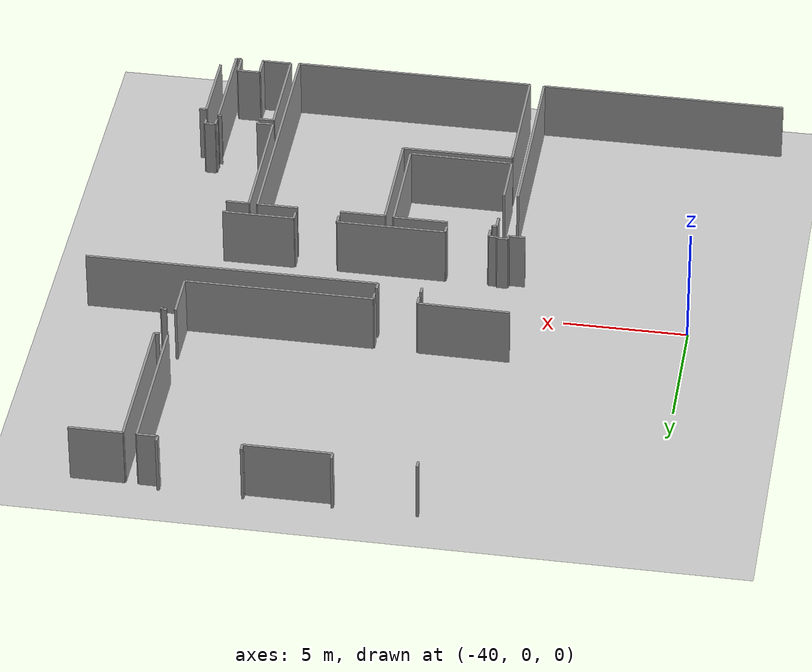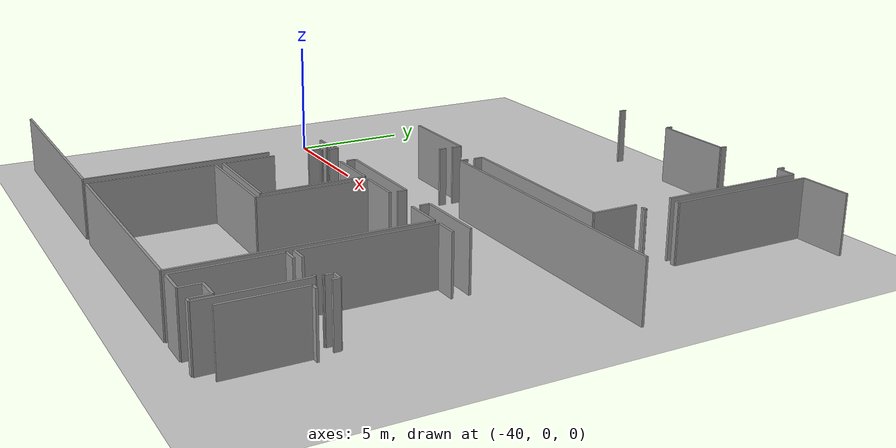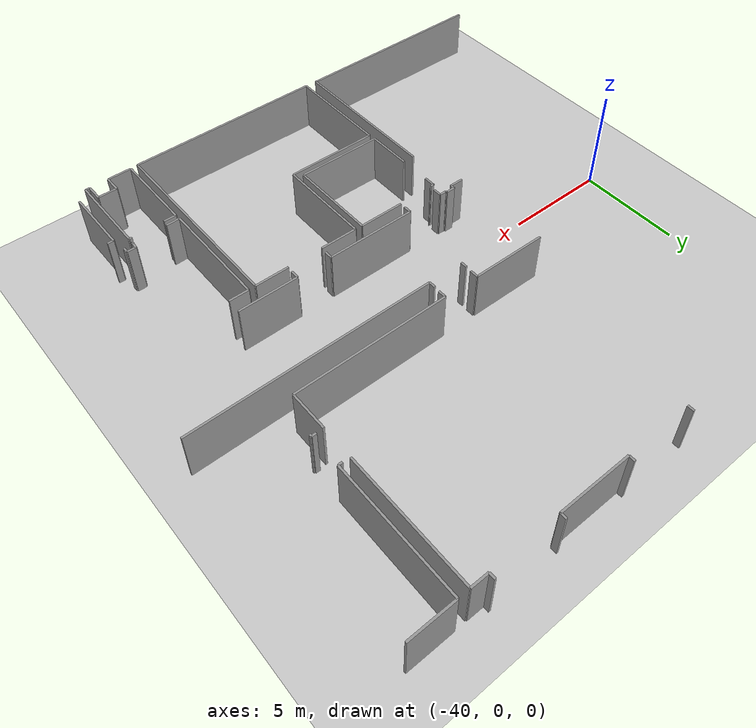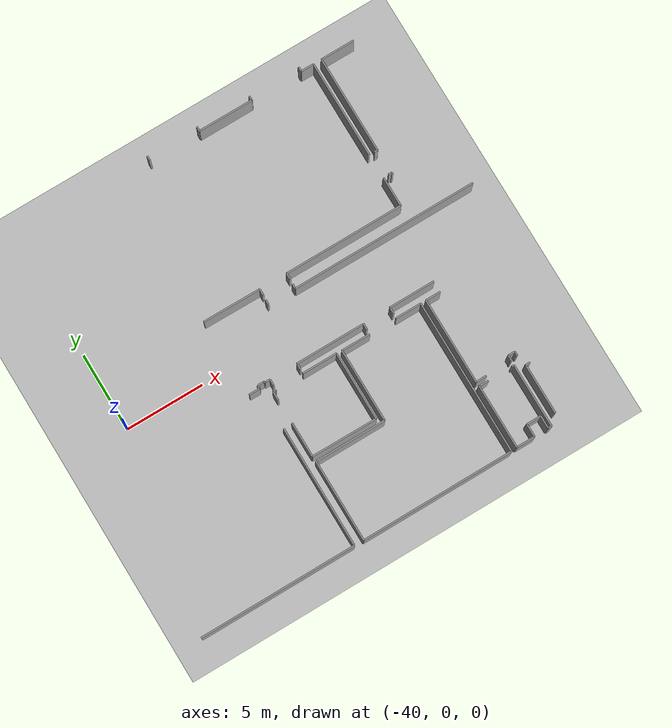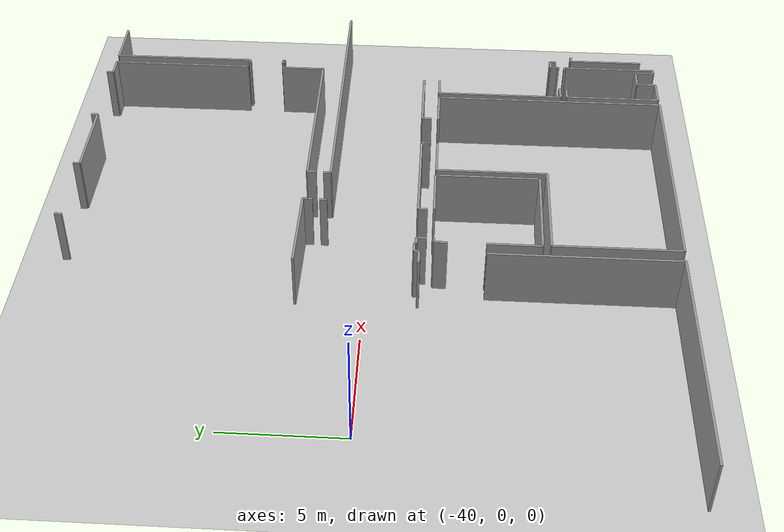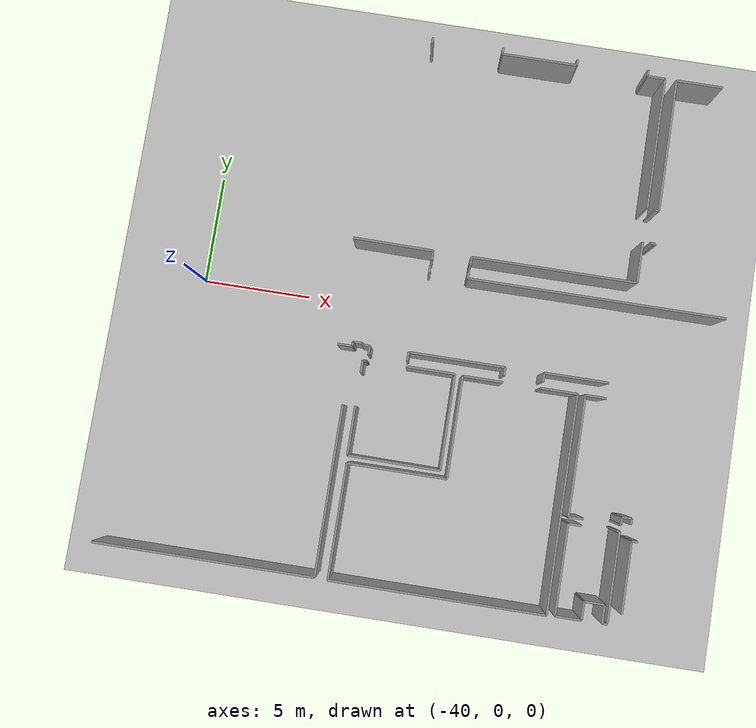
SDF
<sdf version="1.6">
 <world name="default">
  <model name="ground_plane">
   <static>1</static>
   <link name="link">
    <collision name="collision">
     <geometry><plane><normal>0 0 1</normal><size>100 100</size></plane></geometry>
     <surface><friction><ode><mu>100</mu><mu2>50</mu2></ode></friction></surface>
    </collision>
    <visual name="visual">
     <cast_shadows>0</cast_shadows>
     <geometry><plane><normal>0 0 1</normal><size>100 100</size></plane></geometry>
     <material>
      <script><uri>file://media/materials/scripts/gazebo.material</uri><name>Gazebo/Grey</name></script>
     </material>
    </visual>
   </link>
  </model>
  <model name="0510032198_A_40_1_106">
   <static>1</static>
   <link name="Wall_61">
    <collision name="Wall_61_Collision">
     <geometry><box><size>0.307588712854 0.1 2.5</size></box></geometry>
     <pose>0.153794356427 0 1.25 0 0 0</pose>
    </collision>
    <visual name="Wall_61_Visual">
     <pose>0.153794356427 0 1.25 0 0 0</pose>
     <geometry><box><size>0.307588712854 0.1 2.5</size></box></geometry>
     <material>
      <script><uri>file://media/materials/scripts/gazebo.material</uri><name>Gazebo/Grey</name></script>
      <ambient>1 1 1 1</ambient>
     </material>
    </visual>
    <pose>36.569388507 -0.307588712854 0 0 0 1.57079632679</pose>
   </link>
   <link name="Wall_62">
    <collision name="Wall_62_Collision">
     <geometry><box><size>0.291072177261 0.1 2.5</size></box></geometry>
     <pose>0.14553608863 0 1.25 0 0 0</pose>
    </collision>
    <visual name="Wall_62_Visual">
     <pose>0.14553608863 0 1.25 0 0 0</pose>
     <geometry><box><size>0.291072177261 0.1 2.5</size></box></geometry>
     <material>
      <script><uri>file://media/materials/scripts/gazebo.material</uri><name>Gazebo/Grey</name></script>
      <ambient>1 1 1 1</ambient>
     </material>
    </visual>
    <pose>39.8870523066 -0.0 0 0 0 -1.57079632679</pose>
   </link>
   <link name="Wall_63">
    <collision name="Wall_63_Collision">
     <geometry><box><size>3.50226784739 0.1 2.5</size></box></geometry>
     <pose>1.75113392369 0 1.25 0 0 0</pose>
    </collision>
    <visual name="Wall_63_Visual">
     <pose>1.75113392369 0 1.25 0 0 0</pose>
     <geometry><box><size>3.50226784739 0.1 2.5</size></box></geometry>
     <material>
      <script><uri>file://media/materials/scripts/gazebo.material</uri><name>Gazebo/Grey</name></script>
      <ambient>1 1 1 1</ambient>
     </material>
    </visual>
    <pose>39.8870523066 -0.291072177261 0 0 0 0.0</pose>
   </link>
   <link name="Wall_64">
    <collision name="Wall_64_Collision">
     <geometry><box><size>0.283830311654 0.1 2.5</size></box></geometry>
     <pose>0.141915155827 0 1.25 0 0 0</pose>
    </collision>
    <visual name="Wall_64_Visual">
     <pose>0.141915155827 0 1.25 0 0 0</pose>
     <geometry><box><size>0.283830311654 0.1 2.5</size></box></geometry>
     <material>
      <script><uri>file://media/materials/scripts/gazebo.material</uri><name>Gazebo/Grey</name></script>
      <ambient>1 1 1 1</ambient>
     </material>
    </visual>
    <pose>43.389320154 -0.291072177261 0 0 0 1.57079632679</pose>
   </link>
   <link name="Wall_65">
    <collision name="Wall_65_Collision">
     <geometry><box><size>0.296281238486 0.1 2.5</size></box></geometry>
     <pose>0.148140619243 0 1.25 0 0 0</pose>
    </collision>
    <visual name="Wall_65_Visual">
     <pose>0.148140619243 0 1.25 0 0 0</pose>
     <geometry><box><size>0.296281238486 0.1 2.5</size></box></geometry>
     <material>
      <script><uri>file://media/materials/scripts/gazebo.material</uri><name>Gazebo/Grey</name></script>
      <ambient>1 1 1 1</ambient>
     </material>
    </visual>
    <pose>46.7060946016 -0.00724186560622 0 0 0 -1.57079632679</pose>
   </link>
   <link name="Wall_66">
    <collision name="Wall_66_Collision">
     <geometry><box><size>0.822396422264 0.1 2.5</size></box></geometry>
     <pose>0.411198211132 0 1.25 0 0 0</pose>
    </collision>
    <visual name="Wall_66_Visual">
     <pose>0.411198211132 0 1.25 0 0 0</pose>
     <geometry><box><size>0.822396422264 0.1 2.5</size></box></geometry>
     <material>
      <script><uri>file://media/materials/scripts/gazebo.material</uri><name>Gazebo/Grey</name></script>
      <ambient>1 1 1 1</ambient>
     </material>
    </visual>
    <pose>46.7060946016 -0.303523104092 0 0 0 0.0</pose>
   </link>
   <link name="Wall_67">
    <collision name="Wall_67_Collision">
     <geometry><box><size>6.19243034469 0.1 2.5</size></box></geometry>
     <pose>3.09621517234 0 1.25 0 0 0</pose>
    </collision>
    <visual name="Wall_67_Visual">
     <pose>3.09621517234 0 1.25 0 0 0</pose>
     <geometry><box><size>6.19243034469 0.1 2.5</size></box></geometry>
     <material>
      <script><uri>file://media/materials/scripts/gazebo.material</uri><name>Gazebo/Grey</name></script>
      <ambient>1 1 1 1</ambient>
     </material>
    </visual>
    <pose>47.5284910239 -0.303523104092 0 0 0 -1.57079632679</pose>
   </link>
   <link name="Wall_68">
    <collision name="Wall_68_Collision">
     <geometry><box><size>1.89597123582 0.1 2.5</size></box></geometry>
     <pose>0.947985617909 0 1.25 0 0 0</pose>
    </collision>
    <visual name="Wall_68_Visual">
     <pose>0.947985617909 0 1.25 0 0 0</pose>
     <geometry><box><size>1.89597123582 0.1 2.5</size></box></geometry>
     <material>
      <script><uri>file://media/materials/scripts/gazebo.material</uri><name>Gazebo/Grey</name></script>
      <ambient>1 1 1 1</ambient>
     </material>
    </visual>
    <pose>47.5284910239 -8.08497122311 0 0 0 -1.57079632679</pose>
   </link>
   <link name="Wall_69">
    <collision name="Wall_69_Collision">
     <geometry><box><size>7.61945901993 0.1 2.5</size></box></geometry>
     <pose>3.80972950997 0 1.25 0 0 0</pose>
    </collision>
    <visual name="Wall_69_Visual">
     <pose>3.80972950997 0 1.25 0 0 0</pose>
     <geometry><box><size>7.61945901993 0.1 2.5</size></box></geometry>
     <material>
      <script><uri>file://media/materials/scripts/gazebo.material</uri><name>Gazebo/Grey</name></script>
      <ambient>1 1 1 1</ambient>
     </material>
    </visual>
    <pose>47.5284910239 -9.98094245893 0 0 0 3.14159265359</pose>
   </link>
   <link name="Wall_70">
    <collision name="Wall_70_Collision">
     <geometry><box><size>0.389282038903 0.1 2.5</size></box></geometry>
     <pose>0.194641019451 0 1.25 0 0 0</pose>
    </collision>
    <visual name="Wall_70_Visual">
     <pose>0.194641019451 0 1.25 0 0 0</pose>
     <geometry><box><size>0.389282038903 0.1 2.5</size></box></geometry>
     <material>
      <script><uri>file://media/materials/scripts/gazebo.material</uri><name>Gazebo/Grey</name></script>
      <ambient>1 1 1 1</ambient>
     </material>
    </visual>
    <pose>39.909032004 -9.98094245893 0 0 0 -1.57079632679</pose>
   </link>
   <link name="Wall_71">
    <collision name="Wall_71_Collision">
     <geometry><box><size>0.403765770115 0.1 2.5</size></box></geometry>
     <pose>0.201882885058 0 1.25 0 0 0</pose>
    </collision>
    <visual name="Wall_71_Visual">
     <pose>0.201882885058 0 1.25 0 0 0</pose>
     <geometry><box><size>0.403765770115 0.1 2.5</size></box></geometry>
     <material>
      <script><uri>file://media/materials/scripts/gazebo.material</uri><name>Gazebo/Grey</name></script>
      <ambient>1 1 1 1</ambient>
     </material>
    </visual>
    <pose>38.1227051544 -10.3702244978 0 0 0 1.57079632679</pose>
   </link>
   <link name="Wall_72">
    <collision name="Wall_72_Collision">
     <geometry><box><size>3.70047773152 0.1 2.5</size></box></geometry>
     <pose>1.85023886576 0 1.25 0 0 0</pose>
    </collision>
    <visual name="Wall_72_Visual">
     <pose>1.85023886576 0 1.25 0 0 0</pose>
     <geometry><box><size>3.70047773152 0.1 2.5</size></box></geometry>
     <material>
      <script><uri>file://media/materials/scripts/gazebo.material</uri><name>Gazebo/Grey</name></script>
      <ambient>1 1 1 1</ambient>
     </material>
    </visual>
    <pose>38.1227051544 -9.96645872772 0 0 0 3.13294050898</pose>
   </link>
   <link name="Wall_75">
    <collision name="Wall_75_Collision">
     <geometry><box><size>0.101386118487 0.1 2.5</size></box></geometry>
     <pose>0.0506930592435 0 1.25 0 0 0</pose>
    </collision>
    <visual name="Wall_75_Visual">
     <pose>0.0506930592435 0 1.25 0 0 0</pose>
     <geometry><box><size>0.101386118487 0.1 2.5</size></box></geometry>
     <material>
      <script><uri>file://media/materials/scripts/gazebo.material</uri><name>Gazebo/Grey</name></script>
      <ambient>1 1 1 1</ambient>
     </material>
    </visual>
    <pose>48.0866228767 -8.17301706285 0 0 0 1.57079632679</pose>
   </link>
   <link name="Wall_76">
    <collision name="Wall_76_Collision">
     <geometry><box><size>0.217255968187 0.1 2.5</size></box></geometry>
     <pose>0.108627984093 0 1.25 0 0 0</pose>
    </collision>
    <visual name="Wall_76_Visual">
     <pose>0.108627984093 0 1.25 0 0 0</pose>
     <geometry><box><size>0.217255968187 0.1 2.5</size></box></geometry>
     <material>
      <script><uri>file://media/materials/scripts/gazebo.material</uri><name>Gazebo/Grey</name></script>
      <ambient>1 1 1 1</ambient>
     </material>
    </visual>
    <pose>48.0866228767 -8.07163094436 0 0 0 3.14159265359</pose>
   </link>
   <link name="Wall_77">
    <collision name="Wall_77_Collision">
     <geometry><box><size>0.198071376844 0.1 2.5</size></box></geometry>
     <pose>0.0990356884219 0 1.25 0 0 0</pose>
    </collision>
    <visual name="Wall_77_Visual">
     <pose>0.0990356884219 0 1.25 0 0 0</pose>
     <geometry><box><size>0.198071376844 0.1 2.5</size></box></geometry>
     <material>
      <script><uri>file://media/materials/scripts/gazebo.material</uri><name>Gazebo/Grey</name></script>
      <ambient>1 1 1 1</ambient>
     </material>
    </visual>
    <pose>47.8693669085 -6.52326925765 0 0 0 0.0</pose>
   </link>
   <link name="Wall_78">
    <collision name="Wall_78_Collision">
     <geometry><box><size>6.22063550547 0.1 2.5</size></box></geometry>
     <pose>3.11031775273 0 1.25 0 0 0</pose>
    </collision>
    <visual name="Wall_78_Visual">
     <pose>3.11031775273 0 1.25 0 0 0</pose>
     <geometry><box><size>6.22063550547 0.1 2.5</size></box></geometry>
     <material>
      <script><uri>file://media/materials/scripts/gazebo.material</uri><name>Gazebo/Grey</name></script>
      <ambient>1 1 1 1</ambient>
     </material>
    </visual>
    <pose>48.0674382853 -6.52326925765 0 0 0 1.57079632679</pose>
   </link>
   <link name="Wall_79">
    <collision name="Wall_79_Collision">
     <geometry><box><size>2.15769479983 0.1 2.5</size></box></geometry>
     <pose>1.07884739992 0 1.25 0 0 0</pose>
    </collision>
    <visual name="Wall_79_Visual">
     <pose>1.07884739992 0 1.25 0 0 0</pose>
     <geometry><box><size>2.15769479983 0.1 2.5</size></box></geometry>
     <material>
      <script><uri>file://media/materials/scripts/gazebo.material</uri><name>Gazebo/Grey</name></script>
      <ambient>1 1 1 1</ambient>
     </material>
    </visual>
    <pose>48.0674382853 -0.302633752176 0 0 0 0.0</pose>
   </link>
   <link name="Wall_225">
    <collision name="Wall_225_Collision">
     <geometry><box><size>3.21081451931 0.1 2.5</size></box></geometry>
     <pose>1.60540725965 0 1.25 0 0 0</pose>
    </collision>
    <visual name="Wall_225_Visual">
     <pose>1.60540725965 0 1.25 0 0 0</pose>
     <geometry><box><size>3.21081451931 0.1 2.5</size></box></geometry>
     <material>
      <script><uri>file://media/materials/scripts/gazebo.material</uri><name>Gazebo/Grey</name></script>
      <ambient>1 1 1 1</ambient>
     </material>
    </visual>
    <pose>48.8301210789 -24.7199176714 0 0 0 1.57079632679</pose>
   </link>
   <link name="Wall_226">
    <collision name="Wall_226_Collision">
     <geometry><box><size>0.290563976165 0.1 2.5</size></box></geometry>
     <pose>0.145281988083 0 1.25 0 0 0</pose>
    </collision>
    <visual name="Wall_226_Visual">
     <pose>0.145281988083 0 1.25 0 0 0</pose>
     <geometry><box><size>0.290563976165 0.1 2.5</size></box></geometry>
     <material>
      <script><uri>file://media/materials/scripts/gazebo.material</uri><name>Gazebo/Grey</name></script>
      <ambient>1 1 1 1</ambient>
     </material>
    </visual>
    <pose>48.8301210789 -21.5091031521 0 0 0 0.0</pose>
   </link>
   <link name="Wall_230">
    <collision name="Wall_230_Collision">
     <geometry><box><size>4.07882198986 0.1 2.5</size></box></geometry>
     <pose>2.03941099493 0 1.25 0 0 0</pose>
    </collision>
    <visual name="Wall_230_Visual">
     <pose>2.03941099493 0 1.25 0 0 0</pose>
     <geometry><box><size>4.07882198986 0.1 2.5</size></box></geometry>
     <material>
      <script><uri>file://media/materials/scripts/gazebo.material</uri><name>Gazebo/Grey</name></script>
      <ambient>1 1 1 1</ambient>
     </material>
    </visual>
    <pose>45.9348994397 -25.2574673798 0 0 0 1.57079632679</pose>
   </link>
   <link name="Wall_231">
    <collision name="Wall_231_Collision">
     <geometry><box><size>0.606283906542 0.1 2.5</size></box></geometry>
     <pose>0.303141953271 0 1.25 0 0 0</pose>
    </collision>
    <visual name="Wall_231_Visual">
     <pose>0.303141953271 0 1.25 0 0 0</pose>
     <geometry><box><size>0.606283906542 0.1 2.5</size></box></geometry>
     <material>
      <script><uri>file://media/materials/scripts/gazebo.material</uri><name>Gazebo/Grey</name></script>
      <ambient>1 1 1 1</ambient>
     </material>
    </visual>
    <pose>45.9348994397 -21.17864539 0 0 0 0.0</pose>
   </link>
   <link name="Wall_232">
    <collision name="Wall_232_Collision">
     <geometry><box><size>0.134546239947 0.1 2.5</size></box></geometry>
     <pose>0.0672731199736 0 1.25 0 0 0</pose>
    </collision>
    <visual name="Wall_232_Visual">
     <pose>0.0672731199736 0 1.25 0 0 0</pose>
     <geometry><box><size>0.134546239947 0.1 2.5</size></box></geometry>
     <material>
      <script><uri>file://media/materials/scripts/gazebo.material</uri><name>Gazebo/Grey</name></script>
      <ambient>1 1 1 1</ambient>
     </material>
    </visual>
    <pose>48.1216887522 -21.17864539 0 0 0 0.0</pose>
   </link>
   <link name="Wall_233">
    <collision name="Wall_233_Collision">
     <geometry><box><size>4.06916616905 0.1 2.5</size></box></geometry>
     <pose>2.03458308453 0 1.25 0 0 0</pose>
    </collision>
    <visual name="Wall_233_Visual">
     <pose>2.03458308453 0 1.25 0 0 0</pose>
     <geometry><box><size>4.06916616905 0.1 2.5</size></box></geometry>
     <material>
      <script><uri>file://media/materials/scripts/gazebo.material</uri><name>Gazebo/Grey</name></script>
      <ambient>1 1 1 1</ambient>
     </material>
    </visual>
    <pose>48.2562349922 -21.17864539 0 0 0 -1.57079632679</pose>
   </link>
   <link name="Wall_234">
    <collision name="Wall_234_Collision">
     <geometry><box><size>0.220940426127 0.1 2.5</size></box></geometry>
     <pose>0.110470213063 0 1.25 0 0 0</pose>
    </collision>
    <visual name="Wall_234_Visual">
     <pose>0.110470213063 0 1.25 0 0 0</pose>
     <geometry><box><size>0.220940426127 0.1 2.5</size></box></geometry>
     <material>
      <script><uri>file://media/materials/scripts/gazebo.material</uri><name>Gazebo/Grey</name></script>
      <ambient>1 1 1 1</ambient>
     </material>
    </visual>
    <pose>48.2562349922 -25.247811559 0 0 0 3.14159265359</pose>
   </link>
   <link name="Wall_235">
    <collision name="Wall_235_Collision">
     <geometry><box><size>0.816679159944 0.1 2.5</size></box></geometry>
     <pose>0.408339579972 0 1.25 0 0 0</pose>
    </collision>
    <visual name="Wall_235_Visual">
     <pose>0.408339579972 0 1.25 0 0 0</pose>
     <geometry><box><size>0.816679159944 0.1 2.5</size></box></geometry>
     <material>
      <script><uri>file://media/materials/scripts/gazebo.material</uri><name>Gazebo/Grey</name></script>
      <ambient>1 1 1 1</ambient>
     </material>
    </visual>
    <pose>48.0352945661 -25.247811559 0 0 0 1.57079632679</pose>
   </link>
   <link name="Wall_236">
    <collision name="Wall_236_Collision">
     <geometry><box><size>0.922257937466 0.1 2.5</size></box></geometry>
     <pose>0.461128968733 0 1.25 0 0 0</pose>
    </collision>
    <visual name="Wall_236_Visual">
     <pose>0.461128968733 0 1.25 0 0 0</pose>
     <geometry><box><size>0.922257937466 0.1 2.5</size></box></geometry>
     <material>
      <script><uri>file://media/materials/scripts/gazebo.material</uri><name>Gazebo/Grey</name></script>
      <ambient>1 1 1 1</ambient>
     </material>
    </visual>
    <pose>48.0352945661 -24.4311323991 0 0 0 3.14159265359</pose>
   </link>
   <link name="Wall_237">
    <collision name="Wall_237_Collision">
     <geometry><box><size>0.826207930478 0.1 2.5</size></box></geometry>
     <pose>0.413103965239 0 1.25 0 0 0</pose>
    </collision>
    <visual name="Wall_237_Visual">
     <pose>0.413103965239 0 1.25 0 0 0</pose>
     <geometry><box><size>0.826207930478 0.1 2.5</size></box></geometry>
     <material>
      <script><uri>file://media/materials/scripts/gazebo.material</uri><name>Gazebo/Grey</name></script>
      <ambient>1 1 1 1</ambient>
     </material>
    </visual>
    <pose>47.1130366286 -24.4311323991 0 0 0 -1.57079632679</pose>
   </link>
   <link name="Wall_238">
    <collision name="Wall_238_Collision">
     <geometry><box><size>1.17813719574 0.1 2.5</size></box></geometry>
     <pose>0.589068597868 0 1.25 0 0 0</pose>
    </collision>
    <visual name="Wall_238_Visual">
     <pose>0.589068597868 0 1.25 0 0 0</pose>
     <geometry><box><size>1.17813719574 0.1 2.5</size></box></geometry>
     <material>
      <script><uri>file://media/materials/scripts/gazebo.material</uri><name>Gazebo/Grey</name></script>
      <ambient>1 1 1 1</ambient>
     </material>
    </visual>
    <pose>47.1130366286 -25.2573403296 0 0 0 -3.14148481362</pose>
   </link>
   <link name="Wall_239">
    <collision name="Wall_239_Collision">
     <geometry><box><size>5.48882592842 0.1 2.5</size></box></geometry>
     <pose>2.74441296421 0 1.25 0 0 0</pose>
    </collision>
    <visual name="Wall_239_Visual">
     <pose>2.74441296421 0 1.25 0 0 0</pose>
     <geometry><box><size>5.48882592842 0.1 2.5</size></box></geometry>
     <material>
      <script><uri>file://media/materials/scripts/gazebo.material</uri><name>Gazebo/Grey</name></script>
      <ambient>1 1 1 1</ambient>
     </material>
    </visual>
    <pose>45.9098705358 -20.8990077374 0 0 0 1.57079632679</pose>
   </link>
   <link name="Wall_240">
    <collision name="Wall_240_Collision">
     <geometry><box><size>0.948811444689 0.1 2.5</size></box></geometry>
     <pose>0.474405722344 0 1.25 0 0 0</pose>
    </collision>
    <visual name="Wall_240_Visual">
     <pose>0.474405722344 0 1.25 0 0 0</pose>
     <geometry><box><size>0.948811444689 0.1 2.5</size></box></geometry>
     <material>
      <script><uri>file://media/materials/scripts/gazebo.material</uri><name>Gazebo/Grey</name></script>
      <ambient>1 1 1 1</ambient>
     </material>
    </visual>
    <pose>45.9098705358 -15.4101818089 0 0 0 0.0</pose>
   </link>
   <link name="Wall_246">
    <collision name="Wall_246_Collision">
     <geometry><box><size>0.272141686465 0.1 2.5</size></box></geometry>
     <pose>0.136070843233 0 1.25 0 0 0</pose>
    </collision>
    <visual name="Wall_246_Visual">
     <pose>0.136070843233 0 1.25 0 0 0</pose>
     <geometry><box><size>0.272141686465 0.1 2.5</size></box></geometry>
     <material>
      <script><uri>file://media/materials/scripts/gazebo.material</uri><name>Gazebo/Grey</name></script>
      <ambient>1 1 1 1</ambient>
     </material>
    </visual>
    <pose>48.7054847603 -20.8044823337 0 0 0 1.57079632679</pose>
   </link>
   <link name="Wall_247">
    <collision name="Wall_247_Collision">
     <geometry><box><size>0.429811076243 0.1 2.5</size></box></geometry>
     <pose>0.214905538121 0 1.25 0 0 0</pose>
    </collision>
    <visual name="Wall_247_Visual">
     <pose>0.214905538121 0 1.25 0 0 0</pose>
     <geometry><box><size>0.429811076243 0.1 2.5</size></box></geometry>
     <material>
      <script><uri>file://media/materials/scripts/gazebo.material</uri><name>Gazebo/Grey</name></script>
      <ambient>1 1 1 1</ambient>
     </material>
    </visual>
    <pose>48.7054847603 -20.5323406472 0 0 0 3.14159265359</pose>
   </link>
   <link name="Wall_248">
    <collision name="Wall_248_Collision">
     <geometry><box><size>0.343798040885 0.1 2.5</size></box></geometry>
     <pose>0.171899020442 0 1.25 0 0 0</pose>
    </collision>
    <visual name="Wall_248_Visual">
     <pose>0.171899020442 0 1.25 0 0 0</pose>
     <geometry><box><size>0.343798040885 0.1 2.5</size></box></geometry>
     <material>
      <script><uri>file://media/materials/scripts/gazebo.material</uri><name>Gazebo/Grey</name></script>
      <ambient>1 1 1 1</ambient>
     </material>
    </visual>
    <pose>48.2756736841 -20.5323406472 0 0 0 -1.57079632679</pose>
   </link>
   <link name="Wall_249">
    <collision name="Wall_249_Collision">
     <geometry><box><size>0.0716563544194 0.1 2.5</size></box></geometry>
     <pose>0.0358281772097 0 1.25 0 0 0</pose>
    </collision>
    <visual name="Wall_249_Visual">
     <pose>0.0358281772097 0 1.25 0 0 0</pose>
     <geometry><box><size>0.0716563544194 0.1 2.5</size></box></geometry>
     <material>
      <script><uri>file://media/materials/scripts/gazebo.material</uri><name>Gazebo/Grey</name></script>
      <ambient>1 1 1 1</ambient>
     </material>
    </visual>
    <pose>48.2756736841 -20.8761386881 0 0 0 3.14159265359</pose>
   </link>
   <link name="Wall_250">
    <collision name="Wall_250_Collision">
     <geometry><box><size>0.685309706806 0.1 2.5</size></box></geometry>
     <pose>0.342654853403 0 1.25 0 0 0</pose>
    </collision>
    <visual name="Wall_250_Visual">
     <pose>0.342654853403 0 1.25 0 0 0</pose>
     <geometry><box><size>0.685309706806 0.1 2.5</size></box></geometry>
     <material>
      <script><uri>file://media/materials/scripts/gazebo.material</uri><name>Gazebo/Grey</name></script>
      <ambient>1 1 1 1</ambient>
     </material>
    </visual>
    <pose>46.5947985618 -20.8761386881 0 0 0 -3.10821607127</pose>
   </link>
   <link name="Wall_251">
    <collision name="Wall_251_Collision">
     <geometry><box><size>5.20690137087 0.1 2.5</size></box></geometry>
     <pose>2.60345068544 0 1.25 0 0 0</pose>
    </collision>
    <visual name="Wall_251_Visual">
     <pose>2.60345068544 0 1.25 0 0 0</pose>
     <geometry><box><size>5.20690137087 0.1 2.5</size></box></geometry>
     <material>
      <script><uri>file://media/materials/scripts/gazebo.material</uri><name>Gazebo/Grey</name></script>
      <ambient>1 1 1 1</ambient>
     </material>
    </visual>
    <pose>35.7837096139 -25.2828774346 0 0 0 1.57079632679</pose>
   </link>
   <link name="Wall_252">
    <collision name="Wall_252_Collision">
     <geometry><box><size>4.53391607059 0.1 2.5</size></box></geometry>
     <pose>2.26695803529 0 1.25 0 0 0</pose>
    </collision>
    <visual name="Wall_252_Visual">
     <pose>2.26695803529 0 1.25 0 0 0</pose>
     <geometry><box><size>4.53391607059 0.1 2.5</size></box></geometry>
     <material>
      <script><uri>file://media/materials/scripts/gazebo.material</uri><name>Gazebo/Grey</name></script>
      <ambient>1 1 1 1</ambient>
     </material>
    </visual>
    <pose>35.7837096139 -20.0759760637 0 0 0 0.0</pose>
   </link>
   <link name="Wall_253">
    <collision name="Wall_253_Collision">
     <geometry><box><size>4.66147454548 0.1 2.5</size></box></geometry>
     <pose>2.33073727274 0 1.25 0 0 0</pose>
    </collision>
    <visual name="Wall_253_Visual">
     <pose>2.33073727274 0 1.25 0 0 0</pose>
     <geometry><box><size>4.66147454548 0.1 2.5</size></box></geometry>
     <material>
      <script><uri>file://media/materials/scripts/gazebo.material</uri><name>Gazebo/Grey</name></script>
      <ambient>1 1 1 1</ambient>
     </material>
    </visual>
    <pose>40.3176256845 -20.0759760637 0 0 0 1.57079632679</pose>
   </link>
   <link name="Wall_254">
    <collision name="Wall_254_Collision">
     <geometry><box><size>1.83676580823 0.1 2.5</size></box></geometry>
     <pose>0.918382904115 0 1.25 0 0 0</pose>
    </collision>
    <visual name="Wall_254_Visual">
     <pose>0.918382904115 0 1.25 0 0 0</pose>
     <geometry><box><size>1.83676580823 0.1 2.5</size></box></geometry>
     <material>
      <script><uri>file://media/materials/scripts/gazebo.material</uri><name>Gazebo/Grey</name></script>
      <ambient>1 1 1 1</ambient>
     </material>
    </visual>
    <pose>40.3176256845 -15.4145015183 0 0 0 0.0</pose>
   </link>
   <link name="Wall_255">
    <collision name="Wall_255_Collision">
     <geometry><box><size>1.66130938012 0.1 2.5</size></box></geometry>
     <pose>0.830654690061 0 1.25 0 0 0</pose>
    </collision>
    <visual name="Wall_255_Visual">
     <pose>0.830654690061 0 1.25 0 0 0</pose>
     <geometry><box><size>1.66130938012 0.1 2.5</size></box></geometry>
     <material>
      <script><uri>file://media/materials/scripts/gazebo.material</uri><name>Gazebo/Grey</name></script>
      <ambient>1 1 1 1</ambient>
     </material>
    </visual>
    <pose>43.9024762098 -15.4145015183 0 0 0 0.0</pose>
   </link>
   <link name="Wall_256">
    <collision name="Wall_256_Collision">
     <geometry><box><size>9.8758718825 0.1 2.5</size></box></geometry>
     <pose>4.93793594125 0 1.25 0 0 0</pose>
    </collision>
    <visual name="Wall_256_Visual">
     <pose>4.93793594125 0 1.25 0 0 0</pose>
     <geometry><box><size>9.8758718825 0.1 2.5</size></box></geometry>
     <material>
      <script><uri>file://media/materials/scripts/gazebo.material</uri><name>Gazebo/Grey</name></script>
      <ambient>1 1 1 1</ambient>
     </material>
    </visual>
    <pose>45.56378559 -15.4145015183 0 0 0 -1.57079632679</pose>
   </link>
   <link name="Wall_257">
    <collision name="Wall_257_Collision">
     <geometry><box><size>9.78007884872 0.1 2.5</size></box></geometry>
     <pose>4.89003942436 0 1.25 0 0 0</pose>
    </collision>
    <visual name="Wall_257_Visual">
     <pose>4.89003942436 0 1.25 0 0 0</pose>
     <geometry><box><size>9.78007884872 0.1 2.5</size></box></geometry>
     <material>
      <script><uri>file://media/materials/scripts/gazebo.material</uri><name>Gazebo/Grey</name></script>
      <ambient>1 1 1 1</ambient>
     </material>
    </visual>
    <pose>45.56378559 -25.2903734008 0 0 0 3.14082620099</pose>
   </link>
   <link name="Wall_258">
    <collision name="Wall_258_Collision">
     <geometry><box><size>2.22058468536 0.1 2.5</size></box></geometry>
     <pose>1.11029234268 0 1.25 0 0 0</pose>
    </collision>
    <visual name="Wall_258_Visual">
     <pose>1.11029234268 0 1.25 0 0 0</pose>
     <geometry><box><size>2.22058468536 0.1 2.5</size></box></geometry>
     <material>
      <script><uri>file://media/materials/scripts/gazebo.material</uri><name>Gazebo/Grey</name></script>
      <ambient>1 1 1 1</ambient>
     </material>
    </visual>
    <pose>35.7505494924 -19.7256984589 0 0 0 1.57079632679</pose>
   </link>
   <link name="Wall_259">
    <collision name="Wall_259_Collision">
     <geometry><box><size>0.552033439632 0.1 2.5</size></box></geometry>
     <pose>0.276016719816 0 1.25 0 0 0</pose>
    </collision>
    <visual name="Wall_259_Visual">
     <pose>0.276016719816 0 1.25 0 0 0</pose>
     <geometry><box><size>0.552033439632 0.1 2.5</size></box></geometry>
     <material>
      <script><uri>file://media/materials/scripts/gazebo.material</uri><name>Gazebo/Grey</name></script>
      <ambient>1 1 1 1</ambient>
     </material>
    </visual>
    <pose>35.7505494924 -15.9739038738 0 0 0 1.57079632679</pose>
   </link>
   <link name="Wall_260">
    <collision name="Wall_260_Collision">
     <geometry><box><size>0.163894853193 0.1 2.5</size></box></geometry>
     <pose>0.0819474265967 0 1.25 0 0 0</pose>
    </collision>
    <visual name="Wall_260_Visual">
     <pose>0.0819474265967 0 1.25 0 0 0</pose>
     <geometry><box><size>0.163894853193 0.1 2.5</size></box></geometry>
     <material>
      <script><uri>file://media/materials/scripts/gazebo.material</uri><name>Gazebo/Grey</name></script>
      <ambient>1 1 1 1</ambient>
     </material>
    </visual>
    <pose>35.7505494924 -15.4218704341 0 0 0 0.0</pose>
   </link>
   <link name="Wall_261">
    <collision name="Wall_261_Collision">
     <geometry><box><size>0.0363363783049 0.1 2.5</size></box></geometry>
     <pose>0.0181681891524 0 1.25 0 0 0</pose>
    </collision>
    <visual name="Wall_261_Visual">
     <pose>0.0181681891524 0 1.25 0 0 0</pose>
     <geometry><box><size>0.0363363783049 0.1 2.5</size></box></geometry>
     <material>
      <script><uri>file://media/materials/scripts/gazebo.material</uri><name>Gazebo/Grey</name></script>
      <ambient>1 1 1 1</ambient>
     </material>
    </visual>
    <pose>35.9144443456 -15.4218704341 0 0 0 1.57079632679</pose>
   </link>
   <link name="Wall_262">
    <collision name="Wall_262_Collision">
     <geometry><box><size>2.22287159029 0.1 2.5</size></box></geometry>
     <pose>1.11143579514 0 1.25 0 0 0</pose>
    </collision>
    <visual name="Wall_262_Visual">
     <pose>1.11143579514 0 1.25 0 0 0</pose>
     <geometry><box><size>2.22287159029 0.1 2.5</size></box></geometry>
     <material>
      <script><uri>file://media/materials/scripts/gazebo.material</uri><name>Gazebo/Grey</name></script>
      <ambient>1 1 1 1</ambient>
     </material>
    </visual>
    <pose>37.7377428248 -15.3855340558 0 0 0 0.0</pose>
   </link>
   <link name="Wall_263">
    <collision name="Wall_263_Collision">
     <geometry><box><size>4.3670990611 0.1 2.5</size></box></geometry>
     <pose>2.18354953055 0 1.25 0 0 0</pose>
    </collision>
    <visual name="Wall_263_Visual">
     <pose>2.18354953055 0 1.25 0 0 0</pose>
     <geometry><box><size>4.3670990611 0.1 2.5</size></box></geometry>
     <material>
      <script><uri>file://media/materials/scripts/gazebo.material</uri><name>Gazebo/Grey</name></script>
      <ambient>1 1 1 1</ambient>
     </material>
    </visual>
    <pose>39.9606144151 -15.3855340558 0 0 0 -1.57079632679</pose>
   </link>
   <link name="Wall_264">
    <collision name="Wall_264_Collision">
     <geometry><box><size>4.2101510815 0.1 2.5</size></box></geometry>
     <pose>2.10507554075 0 1.25 0 0 0</pose>
    </collision>
    <visual name="Wall_264_Visual">
     <pose>2.10507554075 0 1.25 0 0 0</pose>
     <geometry><box><size>4.2101510815 0.1 2.5</size></box></geometry>
     <material>
      <script><uri>file://media/materials/scripts/gazebo.material</uri><name>Gazebo/Grey</name></script>
      <ambient>1 1 1 1</ambient>
     </material>
    </visual>
    <pose>39.9606144151 -19.7526331169 0 0 0 3.13519505853</pose>
   </link>
   <link name="Wall_269">
    <collision name="Wall_269_Collision">
     <geometry><box><size>7.74155433305 0.1 2.5</size></box></geometry>
     <pose>3.87077716652 0 1.25 0 0 0</pose>
    </collision>
    <visual name="Wall_269_Visual">
     <pose>3.87077716652 0 1.25 0 0 0</pose>
     <geometry><box><size>7.74155433305 0.1 2.5</size></box></geometry>
     <material>
      <script><uri>file://media/materials/scripts/gazebo.material</uri><name>Gazebo/Grey</name></script>
      <ambient>1 1 1 1</ambient>
     </material>
    </visual>
    <pose>35.1800937631 -17.519724555 0 0 0 -1.57079632679</pose>
   </link>
   <link name="Wall_270">
    <collision name="Wall_270_Collision">
     <geometry><box><size>10.0501858989 0.1 2.5</size></box></geometry>
     <pose>5.02509294946 0 1.25 0 0 0</pose>
    </collision>
    <visual name="Wall_270_Visual">
     <pose>5.02509294946 0 1.25 0 0 0</pose>
     <geometry><box><size>10.0501858989 0.1 2.5</size></box></geometry>
     <material>
      <script><uri>file://media/materials/scripts/gazebo.material</uri><name>Gazebo/Grey</name></script>
      <ambient>1 1 1 1</ambient>
     </material>
    </visual>
    <pose>35.1800937631 -25.2612788881 0 0 0 3.14113755653</pose>
   </link>
   <link name="Wall_326">
    <collision name="Wall_326_Collision">
     <geometry><box><size>0.309875617782 0.1 2.5</size></box></geometry>
     <pose>0.154937808891 0 1.25 0 0 0</pose>
    </collision>
    <visual name="Wall_326_Visual">
     <pose>0.154937808891 0 1.25 0 0 0</pose>
     <geometry><box><size>0.309875617782 0.1 2.5</size></box></geometry>
     <material>
      <script><uri>file://media/materials/scripts/gazebo.material</uri><name>Gazebo/Grey</name></script>
      <ambient>1 1 1 1</ambient>
     </material>
    </visual>
    <pose>38.1004713565 -10.975873153 0 0 0 1.57079632679</pose>
   </link>
   <link name="Wall_327">
    <collision name="Wall_327_Collision">
     <geometry><box><size>0.317371583936 0.1 2.5</size></box></geometry>
     <pose>0.158685791968 0 1.25 0 0 0</pose>
    </collision>
    <visual name="Wall_327_Visual">
     <pose>0.158685791968 0 1.25 0 0 0</pose>
     <geometry><box><size>0.317371583936 0.1 2.5</size></box></geometry>
     <material>
      <script><uri>file://media/materials/scripts/gazebo.material</uri><name>Gazebo/Grey</name></script>
      <ambient>1 1 1 1</ambient>
     </material>
    </visual>
    <pose>39.8806997929 -10.6659975352 0 0 0 -1.57079632679</pose>
   </link>
   <link name="Wall_328">
    <collision name="Wall_328_Collision">
     <geometry><box><size>11.8695447789 0.1 2.5</size></box></geometry>
     <pose>5.93477238943 0 1.25 0 0 0</pose>
    </collision>
    <visual name="Wall_328_Visual">
     <pose>5.93477238943 0 1.25 0 0 0</pose>
     <geometry><box><size>11.8695447789 0.1 2.5</size></box></geometry>
     <material>
      <script><uri>file://media/materials/scripts/gazebo.material</uri><name>Gazebo/Grey</name></script>
      <ambient>1 1 1 1</ambient>
     </material>
    </visual>
    <pose>39.8806997929 -10.9833691192 0 0 0 0.0</pose>
   </link>
   <link name="Wall_368">
    <collision name="Wall_368_Collision">
     <geometry><box><size>2.93143096723 0.1 2.5</size></box></geometry>
     <pose>1.46571548362 0 1.25 0 0 0</pose>
    </collision>
    <visual name="Wall_368_Visual">
     <pose>1.46571548362 0 1.25 0 0 0</pose>
     <geometry><box><size>2.93143096723 0.1 2.5</size></box></geometry>
     <material>
      <script><uri>file://media/materials/scripts/gazebo.material</uri><name>Gazebo/Grey</name></script>
      <ambient>1 1 1 1</ambient>
     </material>
    </visual>
    <pose>46.8727845609 -14.7026388342 0 0 0 3.14159265359</pose>
   </link>
   <link name="Wall_369">
    <collision name="Wall_369_Collision">
     <geometry><box><size>0.414056842292 0.1 2.5</size></box></geometry>
     <pose>0.207028421146 0 1.25 0 0 0</pose>
    </collision>
    <visual name="Wall_369_Visual">
     <pose>0.207028421146 0 1.25 0 0 0</pose>
     <geometry><box><size>0.414056842292 0.1 2.5</size></box></geometry>
     <material>
      <script><uri>file://media/materials/scripts/gazebo.material</uri><name>Gazebo/Grey</name></script>
      <ambient>1 1 1 1</ambient>
     </material>
    </visual>
    <pose>43.9413535936 -14.7026388342 0 0 0 -1.57079632679</pose>
   </link>
   <link name="Wall_370">
    <collision name="Wall_370_Collision">
     <geometry><box><size>0.384962329594 0.1 2.5</size></box></geometry>
     <pose>0.192481164797 0 1.25 0 0 0</pose>
    </collision>
    <visual name="Wall_370_Visual">
     <pose>0.192481164797 0 1.25 0 0 0</pose>
     <geometry><box><size>0.384962329594 0.1 2.5</size></box></geometry>
     <material>
      <script><uri>file://media/materials/scripts/gazebo.material</uri><name>Gazebo/Grey</name></script>
      <ambient>1 1 1 1</ambient>
     </material>
    </visual>
    <pose>42.1616333583 -15.1166956765 0 0 0 1.57079632679</pose>
   </link>
   <link name="Wall_371">
    <collision name="Wall_371_Collision">
     <geometry><box><size>4.41690276843 0.1 2.5</size></box></geometry>
     <pose>2.20845138421 0 1.25 0 0 0</pose>
    </collision>
    <visual name="Wall_371_Visual">
     <pose>2.20845138421 0 1.25 0 0 0</pose>
     <geometry><box><size>4.41690276843 0.1 2.5</size></box></geometry>
     <material>
      <script><uri>file://media/materials/scripts/gazebo.material</uri><name>Gazebo/Grey</name></script>
      <ambient>1 1 1 1</ambient>
     </material>
    </visual>
    <pose>42.1616333583 -14.7317333469 0 0 0 3.14159265359</pose>
   </link>
   <link name="Wall_372">
    <collision name="Wall_372_Collision">
     <geometry><box><size>0.390425491367 0.1 2.5</size></box></geometry>
     <pose>0.195212745683 0 1.25 0 0 0</pose>
    </collision>
    <visual name="Wall_372_Visual">
     <pose>0.195212745683 0 1.25 0 0 0</pose>
     <geometry><box><size>0.390425491367 0.1 2.5</size></box></geometry>
     <material>
      <script><uri>file://media/materials/scripts/gazebo.material</uri><name>Gazebo/Grey</name></script>
      <ambient>1 1 1 1</ambient>
     </material>
    </visual>
    <pose>37.7447305899 -14.7317333469 0 0 0 -1.57079632679</pose>
   </link>
   <link name="Wall_373">
    <collision name="Wall_373_Collision">
     <geometry><box><size>0.404909222579 0.1 2.5</size></box></geometry>
     <pose>0.20245461129 0 1.25 0 0 0</pose>
    </collision>
    <visual name="Wall_373_Visual">
     <pose>0.20245461129 0 1.25 0 0 0</pose>
     <geometry><box><size>0.404909222579 0.1 2.5</size></box></geometry>
     <material>
      <script><uri>file://media/materials/scripts/gazebo.material</uri><name>Gazebo/Grey</name></script>
      <ambient>1 1 1 1</ambient>
     </material>
    </visual>
    <pose>35.9611988464 -15.1221588383 0 0 0 1.57079632679</pose>
   </link>
   <link name="Wall_374">
    <collision name="Wall_374_Collision">
     <geometry><box><size>0.344560342528 0.1 2.5</size></box></geometry>
     <pose>0.172280171264 0 1.25 0 0 0</pose>
    </collision>
    <visual name="Wall_374_Visual">
     <pose>0.172280171264 0 1.25 0 0 0</pose>
     <geometry><box><size>0.344560342528 0.1 2.5</size></box></geometry>
     <material>
      <script><uri>file://media/materials/scripts/gazebo.material</uri><name>Gazebo/Grey</name></script>
      <ambient>1 1 1 1</ambient>
     </material>
    </visual>
    <pose>35.9611988464 -14.7172496157 0 0 0 3.14159265359</pose>
   </link>
   <link name="Wall_375">
    <collision name="Wall_375_Collision">
     <geometry><box><size>0.0654308910036 0.1 2.5</size></box></geometry>
     <pose>0.0327154455018 0 1.25 0 0 0</pose>
    </collision>
    <visual name="Wall_375_Visual">
     <pose>0.0327154455018 0 1.25 0 0 0</pose>
     <geometry><box><size>0.0654308910036 0.1 2.5</size></box></geometry>
     <material>
      <script><uri>file://media/materials/scripts/gazebo.material</uri><name>Gazebo/Grey</name></script>
      <ambient>1 1 1 1</ambient>
     </material>
    </visual>
    <pose>35.6166385039 -14.7172496157 0 0 0 1.57079632679</pose>
   </link>
   <link name="Wall_376">
    <collision name="Wall_376_Collision">
     <geometry><box><size>0.435909489385 0.1 2.5</size></box></geometry>
     <pose>0.217954744692 0 1.25 0 0 0</pose>
    </collision>
    <visual name="Wall_376_Visual">
     <pose>0.217954744692 0 1.25 0 0 0</pose>
     <geometry><box><size>0.435909489385 0.1 2.5</size></box></geometry>
     <material>
      <script><uri>file://media/materials/scripts/gazebo.material</uri><name>Gazebo/Grey</name></script>
      <ambient>1 1 1 1</ambient>
     </material>
    </visual>
    <pose>35.6166385039 -14.6518187247 0 0 0 3.14159265359</pose>
   </link>
   <link name="Wall_377">
    <collision name="Wall_377_Collision">
     <geometry><box><size>0.203407488343 0.1 2.5</size></box></geometry>
     <pose>0.101703744172 0 1.25 0 0 0</pose>
    </collision>
    <visual name="Wall_377_Visual">
     <pose>0.101703744172 0 1.25 0 0 0</pose>
     <geometry><box><size>0.203407488343 0.1 2.5</size></box></geometry>
     <material>
      <script><uri>file://media/materials/scripts/gazebo.material</uri><name>Gazebo/Grey</name></script>
      <ambient>1 1 1 1</ambient>
     </material>
    </visual>
    <pose>35.1807290145 -14.6518187247 0 0 0 -1.57079632679</pose>
   </link>
   <link name="Wall_378">
    <collision name="Wall_378_Collision">
     <geometry><box><size>0.682768171365 0.1 2.5</size></box></geometry>
     <pose>0.341384085683 0 1.25 0 0 0</pose>
    </collision>
    <visual name="Wall_378_Visual">
     <pose>0.341384085683 0 1.25 0 0 0</pose>
     <geometry><box><size>0.682768171365 0.1 2.5</size></box></geometry>
     <material>
      <script><uri>file://media/materials/scripts/gazebo.material</uri><name>Gazebo/Grey</name></script>
      <ambient>1 1 1 1</ambient>
     </material>
    </visual>
    <pose>35.1807290145 -14.855226213 0 0 0 3.14159265359</pose>
   </link>
   <pose>-67.6 12.6852799553 0 0 0 0</pose>
  </model>
 </world>
</sdf>
